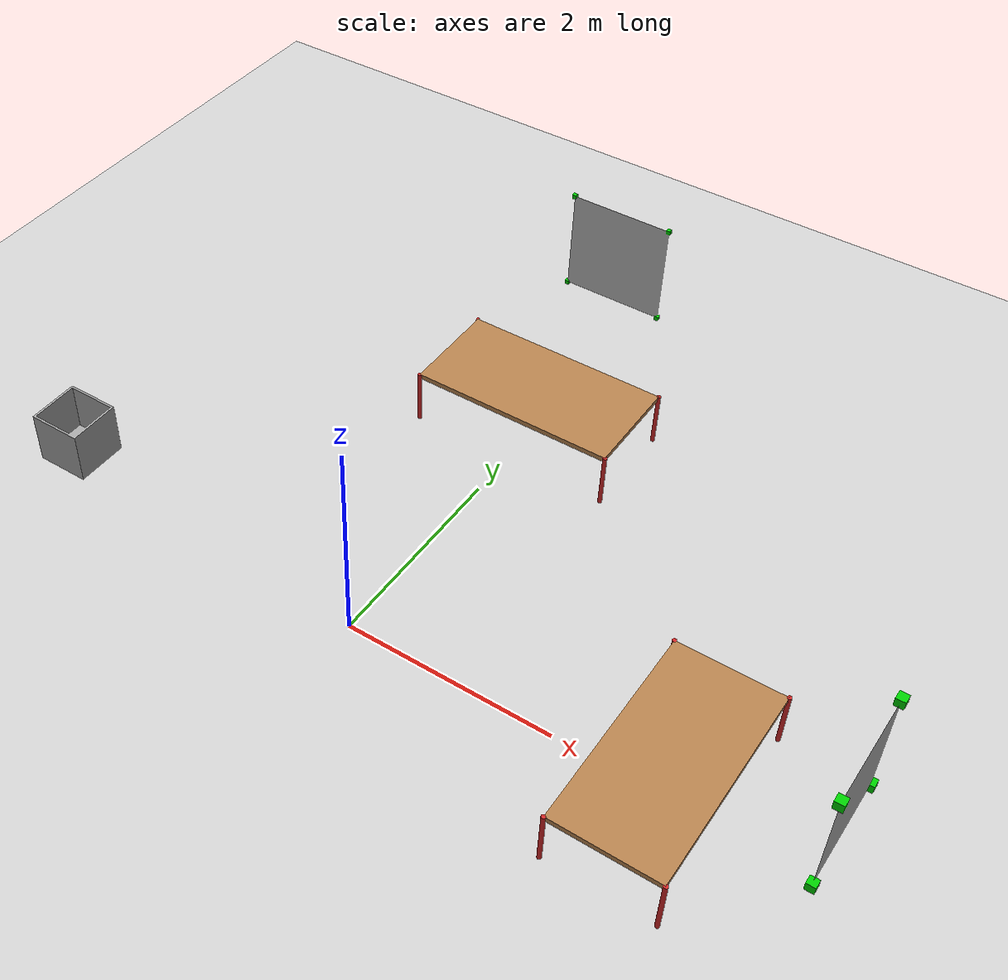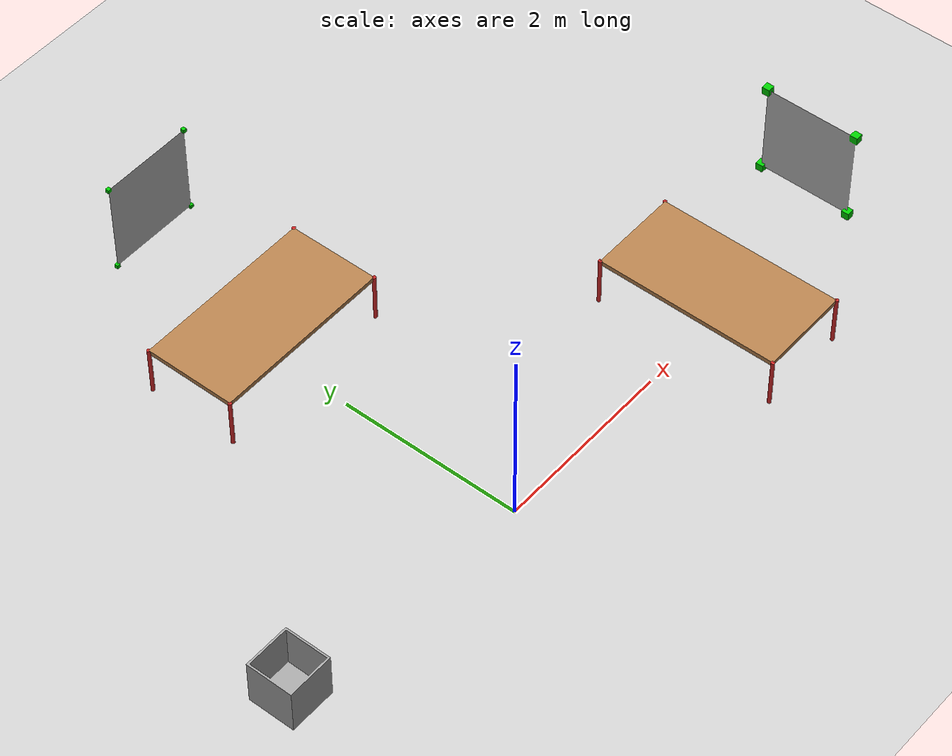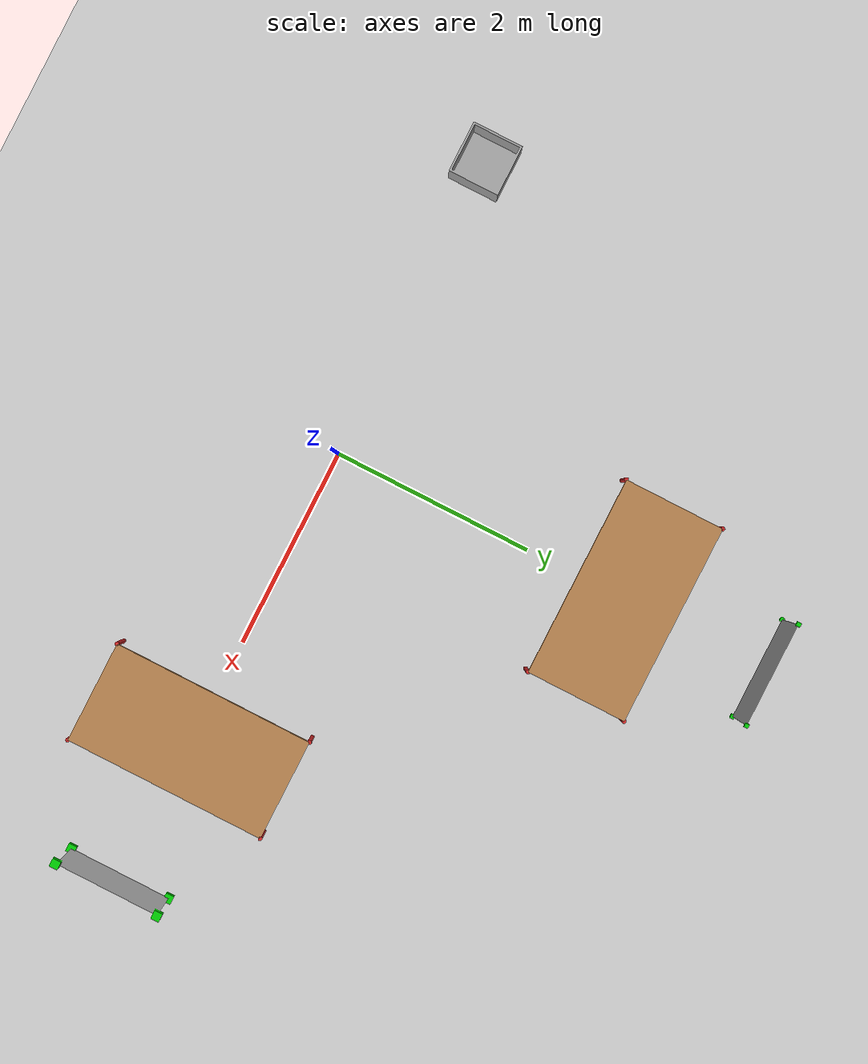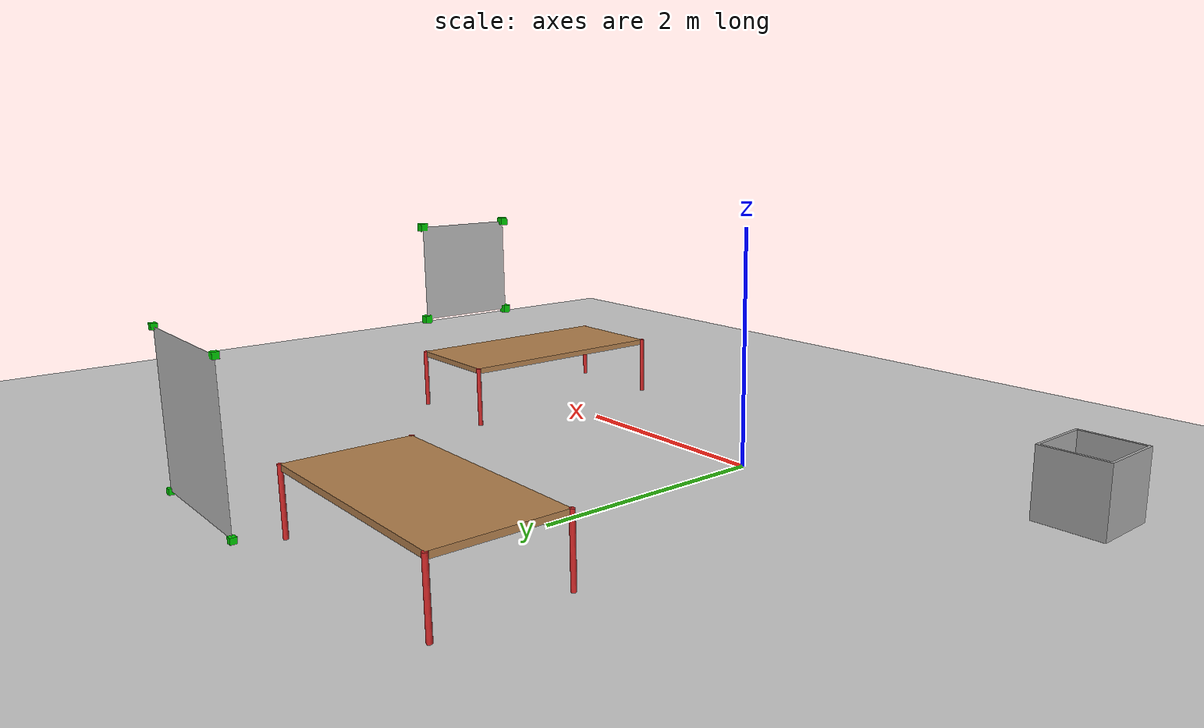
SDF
<sdf version="1.4">
 <world name="default">
  <include><uri>model://ground_plane</uri></include>
  <include><uri>model://sun</uri></include>
  <include><uri>model://long_table</uri><name>table1</name><pose>3 0 0 0 0 0</pose></include>
  <include><uri>model://label_radioactive</uri><pose>4.347 0 1.195 0 0 -1.5708</pose></include>
  <include><uri>model://long_table</uri><name>table2</name><pose>0 3 0 0 0 1.5707</pose></include>
  <include><uri>model://label_corrosive</uri><pose>0 4.347 1.195 0 0 0</pose></include>
  <include><uri>model://container</uri><pose>-3 0 0.4 0 0 0</pose></include>
  <light type="point" name="point">
   <pose>0 0 2 0 0 0</pose>
   <diffuse>255 255 255 255</diffuse>
   <specular>25 25 25 25</specular>
   <attenuation>
    <range>20</range>
    <linear>0.01</linear>
    <constant>0.5</constant>
    <quadratic>0.0</quadratic>
   </attenuation>
   <cast_shadows>false</cast_shadows>
  </light>
 </world>
</sdf>

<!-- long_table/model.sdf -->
<sdf version='1.4'>
    <model name='long_table'>
      <link name='table_top_link'>
        <pose>0 0 0 0 -0 0</pose>
        <inertial>
          <pose>0 0 0.325 0 -0 0</pose>
          <mass>5</mass>
          <inertia>
            <ixx>5.45</ixx>
            <ixy>0</ixy>
            <ixz>0</ixz>
            <iyy>2.45</iyy>
            <iyz>0</iyz>
            <izz>6.04</izz>
          </inertia>
        </inertial>
        <collision name='table_top_link_collision'>
          <pose>0 0 0.525 0 -0 0</pose>
          <geometry>
            <box>
              <size>1 2 0.05</size>
            </box>
          </geometry>
          <surface>
            <contact>
              <ode>
                <kp>1e+06</kp>
                <kd>1</kd>
              </ode>
            </contact>
            <friction>
              <ode>
                <mu>50</mu>
                <mu2>50</mu2>
              </ode>
            </friction>
            <bounce/>
          </surface>
          <max_contacts>10</max_contacts>
        </collision>
        <collision name='table_top_link_collision_leg1_link'>
          <pose>0.5 1 0.275 0 -0 0</pose>
          <geometry>
            <cylinder>
              <length>0.55</length>
              <radius>0.02</radius>
            </cylinder>
          </geometry>
          <surface>
            <contact>
              <ode>
                <kp>1e+06</kp>
                <kd>1</kd>
              </ode>
            </contact>
            <friction>
              <ode>
                <mu>50</mu>
                <mu2>50</mu2>
              </ode>
            </friction>
            <bounce/>
          </surface>
          <surface>
            <contact>
              <ode>
                <kp>1e+07</kp>
                <kd>1</kd>
              </ode>
            </contact>
            <friction>
              <ode>
                <mu>1000</mu>
                <mu2>1000</mu2>
              </ode>
            </friction>
          </surface>
          <max_contacts>10</max_contacts>
        </collision>
        <collision name='table_top_link_collision_leg2_link'>
          <pose>-0.5 1 0.275 0 -0 0</pose>
          <geometry>
            <cylinder>
              <length>0.55</length>
              <radius>0.02</radius>
            </cylinder>
          </geometry>
          <surface>
            <contact>
              <ode>
                <kp>1e+06</kp>
                <kd>1</kd>
              </ode>
            </contact>
            <friction>
              <ode>
                <mu>50</mu>
                <mu2>50</mu2>
              </ode>
            </friction>
            <bounce/>
          </surface>
          <surface>
            <contact>
              <ode>
                <kp>1e+07</kp>
                <kd>1</kd>
              </ode>
            </contact>
            <friction>
              <ode>
                <mu>1000</mu>
                <mu2>1000</mu2>
              </ode>
            </friction>
          </surface>
          <max_contacts>10</max_contacts>
        </collision>
        <collision name='table_top_link_collision_leg3_link'>
          <pose>0.5 -1 0.275 0 -0 0</pose>
          <geometry>
            <cylinder>
              <length>0.55</length>
              <radius>0.02</radius>
            </cylinder>
          </geometry>
          <surface>
            <contact>
              <ode>
                <kp>1e+06</kp>
                <kd>1</kd>
              </ode>
            </contact>
            <friction>
              <ode>
                <mu>50</mu>
                <mu2>50</mu2>
              </ode>
            </friction>
            <bounce/>
          </surface>
          <surface>
            <contact>
              <ode>
                <kp>1e+07</kp>
                <kd>1</kd>
              </ode>
            </contact>
            <friction>
              <ode>
                <mu>1000</mu>
                <mu2>1000</mu2>
              </ode>
            </friction>
          </surface>
          <max_contacts>10</max_contacts>
        </collision>
        <collision name='table_top_link_collision_leg4_link'>
          <pose>-0.5 -1 0.275 0 -0 0</pose>
          <geometry>
            <cylinder>
              <length>0.55</length>
              <radius>0.02</radius>
            </cylinder>
          </geometry>
          <surface>
            <contact>
              <ode>
                <kp>1e+06</kp>
                <kd>1</kd>
              </ode>
            </contact>
            <friction>
              <ode>
                <mu>50</mu>
                <mu2>50</mu2>
              </ode>
            </friction>
            <bounce/>
          </surface>
          <surface>
            <contact>
              <ode>
                <kp>1e+07</kp>
                <kd>1</kd>
              </ode>
            </contact>
            <friction>
              <ode>
                <mu>1000</mu>
                <mu2>1000</mu2>
              </ode>
            </friction>
          </surface>
          <max_contacts>10</max_contacts>
        </collision>
        <visual name='table_top_link_visual'>
          <pose>0 0 0.525 0 -0 0</pose>
          <geometry>
            <box>
              <size>1 2 0.05</size>
            </box>
          </geometry>
          <material>
            <script>
              <name>Gazebo/Wood</name>
              <uri>__default__</uri>
            </script>
          </material>
        </visual>
        <visual name='table_top_link_visual_leg1_link'>
          <pose>0.5 1 0.275 0 -0 0</pose>
          <geometry>
            <cylinder>
              <length>0.55</length>
              <radius>0.02</radius>
            </cylinder>
          </geometry>
          <material>
            <script>
              <name>Gazebo/Red</name>
              <uri>__default__</uri>
            </script>
          </material>
        </visual>
        <visual name='table_top_link_visual_leg2_link'>
          <pose>-0.5 1 0.275 0 -0 0</pose>
          <geometry>
            <cylinder>
              <length>0.55</length>
              <radius>0.02</radius>
            </cylinder>
          </geometry>
          <material>
            <script>
              <name>Gazebo/Red</name>
              <uri>__default__</uri>
            </script>
          </material>
        </visual>
        <visual name='table_top_link_visual_leg3_link'>
          <pose>0.5 -1 0.275 0 -0 0</pose>
          <geometry>
            <cylinder>
              <length>0.55</length>
              <radius>0.02</radius>
            </cylinder>
          </geometry>
          <material>
            <script>
              <name>Gazebo/Red</name>
              <uri>__default__</uri>
            </script>
          </material>
        </visual>
        <visual name='table_top_link_visual_leg4_link'>
          <pose>-0.5 -1 0.275 0 -0 0</pose>
          <geometry>
            <cylinder>
              <length>0.55</length>
              <radius>0.02</radius>
            </cylinder>
          </geometry>
          <material>
            <script>
              <name>Gazebo/Red</name>
              <uri>__default__</uri>
            </script>
          </material>
        </visual>
        <velocity_decay>
          <linear>0</linear>
          <angular>0</angular>
        </velocity_decay>
        <velocity_decay>
          <linear>0</linear>
          <angular>0</angular>
        </velocity_decay>
        <velocity_decay>
          <linear>0</linear>
          <angular>0</angular>
        </velocity_decay>
        <velocity_decay>
          <linear>0</linear>
          <angular>0</angular>
        </velocity_decay>
        <gravity>1</gravity>
        <velocity_decay>
          <linear>0</linear>
          <angular>0</angular>
        </velocity_decay>
        <self_collide>1</self_collide>
        <kinematic>0</kinematic>
      </link>
      <static>1</static>
      <pose>0 0 0 0 -0 0</pose>
    </model>
</sdf>

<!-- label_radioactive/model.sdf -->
<sdf version='1.4'>
  <model name="label_corrosive">
      <static>0</static>
      <link name='link'>
        <visual name='visual'>
          <geometry>
            <mesh>
              <uri>model://label_radioactive/model.dae</uri>
            </mesh>
          </geometry>
          <material>
            <script>
              <uri>model://label_radioactive/model.dae</uri>
              <name></name>
            </script>
          </material>
        </visual>
        <velocity_decay>
          <linear>0.000000</linear>
          <angular>0.000000</angular>
        </velocity_decay>
        <self_collide>0</self_collide>
        <kinematic>0</kinematic>
        <gravity>0</gravity>
      </link>
  </model>
</sdf>

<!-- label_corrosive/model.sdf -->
<sdf version='1.4'>
  <model name="label_corrosive">
      <static>0</static>
      <link name='link'>
        <visual name='visual'>
          <geometry>
            <mesh>
              <uri>model://label_corrosive/model.dae</uri>
            </mesh>
          </geometry>
          <material>
            <script>
              <uri>model://label_corrosive/model.dae</uri>
              <name></name>
            </script>
          </material>
        </visual>
        <velocity_decay>
          <linear>0.000000</linear>
          <angular>0.000000</angular>
        </velocity_decay>
        <self_collide>0</self_collide>
        <kinematic>0</kinematic>
        <gravity>0</gravity>
      </link>
  </model>
</sdf>

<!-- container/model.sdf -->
<sdf version='1.4'>
  <model name="container">
      <static>1</static>
      <link name='link'>
        <collision name="collision">
          <geometry>
            <mesh>
              <uri>model://container/model.dae</uri>
            </mesh>
          </geometry>
        </collision>
        <visual name='visual'>
          <geometry>
            <mesh>
              <uri>model://container/model.dae</uri>
            </mesh>
          </geometry>
          <material>
            <script>
              <uri>model://container/model.dae</uri>
              <name></name>
            </script>
          </material>
        </visual>
        <velocity_decay>
          <linear>0.000000</linear>
          <angular>0.000000</angular>
        </velocity_decay>
        <self_collide>0</self_collide>
        <kinematic>0</kinematic>
        <gravity>0</gravity>
      </link>
  </model>
</sdf>
